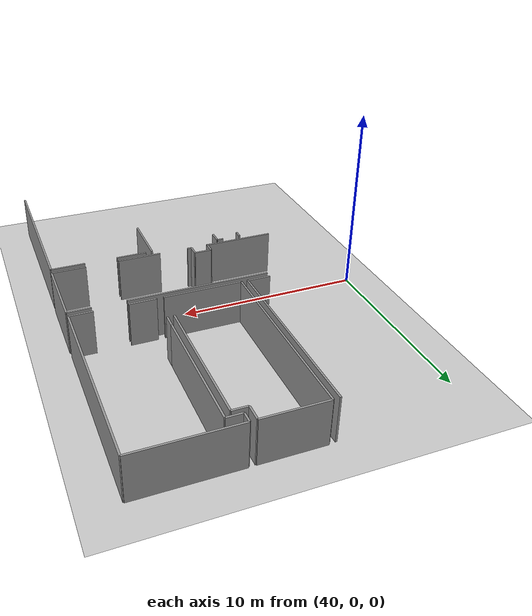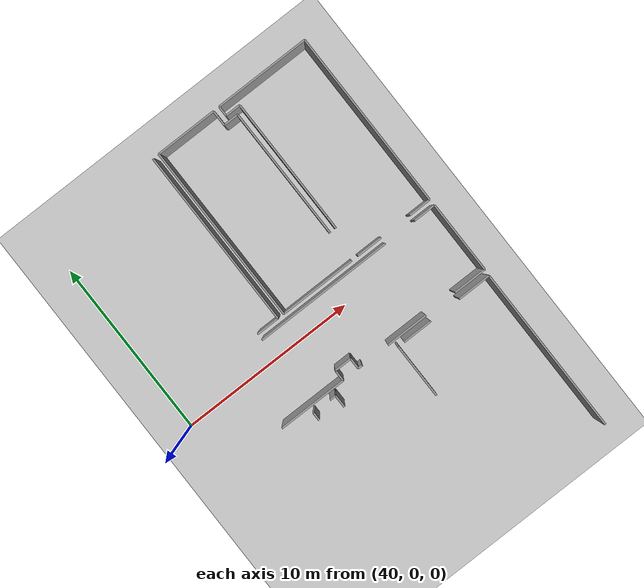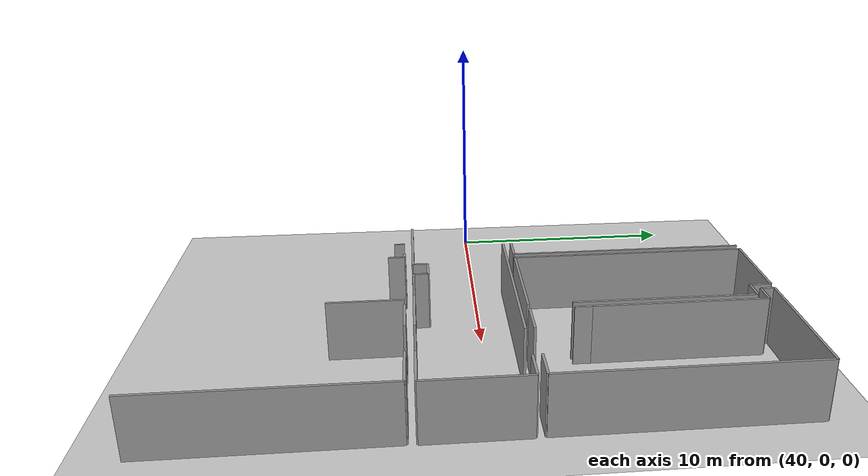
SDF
<sdf version="1.6">
 <world name="default">
  <model name="ground_plane">
   <static>1</static>
   <link name="link">
    <collision name="collision">
     <geometry><plane><normal>0 0 1</normal><size>100 100</size></plane></geometry>
     <surface><friction><ode><mu>100</mu><mu2>50</mu2></ode></friction></surface>
    </collision>
    <visual name="visual">
     <cast_shadows>0</cast_shadows>
     <geometry><plane><normal>0 0 1</normal><size>100 100</size></plane></geometry>
     <material>
      <script><uri>file://media/materials/scripts/gazebo.material</uri><name>Gazebo/Grey</name></script>
     </material>
    </visual>
   </link>
  </model>
  <model name="0510034689_Layout1">
   <static>1</static>
   <link name="Wall_261">
    <collision name="Wall_261_Collision">
     <geometry><box><size>7.66786259552 0.1 2.5</size></box></geometry>
     <pose>3.83393129776 0 1.25 0 0 0</pose>
    </collision>
    <visual name="Wall_261_Visual">
     <pose>3.83393129776 0 1.25 0 0 0</pose>
     <geometry><box><size>7.66786259552 0.1 2.5</size></box></geometry>
     <material>
      <script><uri>file://media/materials/scripts/gazebo.material</uri><name>Gazebo/Grey</name></script>
      <ambient>1 1 1 1</ambient>
     </material>
    </visual>
    <pose>102.17462761 -11.0329195597 0 0 0 0.0</pose>
   </link>
   <link name="Wall_262">
    <collision name="Wall_262_Collision">
     <geometry><box><size>1.24119393211 0.1 2.5</size></box></geometry>
     <pose>0.620596966055 0 1.25 0 0 0</pose>
    </collision>
    <visual name="Wall_262_Visual">
     <pose>0.620596966055 0 1.25 0 0 0</pose>
     <geometry><box><size>1.24119393211 0.1 2.5</size></box></geometry>
     <material>
      <script><uri>file://media/materials/scripts/gazebo.material</uri><name>Gazebo/Grey</name></script>
      <ambient>1 1 1 1</ambient>
     </material>
    </visual>
    <pose>111.649709182 -11.0329195597 0 0 0 0.0</pose>
   </link>
   <link name="Wall_263">
    <collision name="Wall_263_Collision">
     <geometry><box><size>3.9959337573 0.1 2.5</size></box></geometry>
     <pose>1.99796687865 0 1.25 0 0 0</pose>
    </collision>
    <visual name="Wall_263_Visual">
     <pose>1.99796687865 0 1.25 0 0 0</pose>
     <geometry><box><size>3.9959337573 0.1 2.5</size></box></geometry>
     <material>
      <script><uri>file://media/materials/scripts/gazebo.material</uri><name>Gazebo/Grey</name></script>
      <ambient>1 1 1 1</ambient>
     </material>
    </visual>
    <pose>112.890903115 -11.0329195597 0 0 0 -1.57079632679</pose>
   </link>
   <link name="Wall_264">
    <collision name="Wall_264_Collision">
     <geometry><box><size>1.84402329586 0.1 2.5</size></box></geometry>
     <pose>0.922011647932 0 1.25 0 0 0</pose>
    </collision>
    <visual name="Wall_264_Visual">
     <pose>0.922011647932 0 1.25 0 0 0</pose>
     <geometry><box><size>1.84402329586 0.1 2.5</size></box></geometry>
     <material>
      <script><uri>file://media/materials/scripts/gazebo.material</uri><name>Gazebo/Grey</name></script>
      <ambient>1 1 1 1</ambient>
     </material>
    </visual>
    <pose>112.890903115 -15.028853317 0 0 0 3.14159265359</pose>
   </link>
   <link name="Wall_265">
    <collision name="Wall_265_Collision">
     <geometry><box><size>2.35826847101 0.1 2.5</size></box></geometry>
     <pose>1.1791342355 0 1.25 0 0 0</pose>
    </collision>
    <visual name="Wall_265_Visual">
     <pose>1.1791342355 0 1.25 0 0 0</pose>
     <geometry><box><size>2.35826847101 0.1 2.5</size></box></geometry>
     <material>
      <script><uri>file://media/materials/scripts/gazebo.material</uri><name>Gazebo/Grey</name></script>
      <ambient>1 1 1 1</ambient>
     </material>
    </visual>
    <pose>109.242199071 -15.028853317 0 0 0 3.14159265359</pose>
   </link>
   <link name="Wall_266">
    <collision name="Wall_266_Collision">
     <geometry><box><size>0.242781594287 0.1 2.5</size></box></geometry>
     <pose>0.121390797143 0 1.25 0 0 0</pose>
    </collision>
    <visual name="Wall_266_Visual">
     <pose>0.121390797143 0 1.25 0 0 0</pose>
     <geometry><box><size>0.242781594287 0.1 2.5</size></box></geometry>
     <material>
      <script><uri>file://media/materials/scripts/gazebo.material</uri><name>Gazebo/Grey</name></script>
      <ambient>1 1 1 1</ambient>
     </material>
    </visual>
    <pose>105.2749473 -15.028853317 0 0 0 3.14159265359</pose>
   </link>
   <link name="Wall_267">
    <collision name="Wall_267_Collision">
     <geometry><box><size>0.606890529995 0.1 2.5</size></box></geometry>
     <pose>0.303445264997 0 1.25 0 0 0</pose>
    </collision>
    <visual name="Wall_267_Visual">
     <pose>0.303445264997 0 1.25 0 0 0</pose>
     <geometry><box><size>0.606890529995 0.1 2.5</size></box></geometry>
     <material>
      <script><uri>file://media/materials/scripts/gazebo.material</uri><name>Gazebo/Grey</name></script>
      <ambient>1 1 1 1</ambient>
     </material>
    </visual>
    <pose>105.032165706 -15.028853317 0 0 0 1.57079632679</pose>
   </link>
   <link name="Wall_268">
    <collision name="Wall_268_Collision">
     <geometry><box><size>0.949043785718 0.1 2.5</size></box></geometry>
     <pose>0.474521892859 0 1.25 0 0 0</pose>
    </collision>
    <visual name="Wall_268_Visual">
     <pose>0.474521892859 0 1.25 0 0 0</pose>
     <geometry><box><size>0.949043785718 0.1 2.5</size></box></geometry>
     <material>
      <script><uri>file://media/materials/scripts/gazebo.material</uri><name>Gazebo/Grey</name></script>
      <ambient>1 1 1 1</ambient>
     </material>
    </visual>
    <pose>105.032165706 -14.421962787 0 0 0 3.14159265359</pose>
   </link>
   <link name="Wall_269">
    <collision name="Wall_269_Collision">
     <geometry><box><size>0.61793182571 0.1 2.5</size></box></geometry>
     <pose>0.308965912855 0 1.25 0 0 0</pose>
    </collision>
    <visual name="Wall_269_Visual">
     <pose>0.308965912855 0 1.25 0 0 0</pose>
     <geometry><box><size>0.61793182571 0.1 2.5</size></box></geometry>
     <material>
      <script><uri>file://media/materials/scripts/gazebo.material</uri><name>Gazebo/Grey</name></script>
      <ambient>1 1 1 1</ambient>
     </material>
    </visual>
    <pose>104.08312192 -14.421962787 0 0 0 -1.57079632679</pose>
   </link>
   <link name="Wall_270">
    <collision name="Wall_270_Collision">
     <geometry><box><size>3.79554058565 0.1 2.5</size></box></geometry>
     <pose>1.89777029282 0 1.25 0 0 0</pose>
    </collision>
    <visual name="Wall_270_Visual">
     <pose>1.89777029282 0 1.25 0 0 0</pose>
     <geometry><box><size>3.79554058565 0.1 2.5</size></box></geometry>
     <material>
      <script><uri>file://media/materials/scripts/gazebo.material</uri><name>Gazebo/Grey</name></script>
      <ambient>1 1 1 1</ambient>
     </material>
    </visual>
    <pose>104.08312192 -15.0398946127 0 0 0 3.14159265359</pose>
   </link>
   <link name="Wall_304">
    <collision name="Wall_304_Collision">
     <geometry><box><size>9.91724104671 0.1 2.5</size></box></geometry>
     <pose>4.95862052336 0 1.25 0 0 0</pose>
    </collision>
    <visual name="Wall_304_Visual">
     <pose>4.95862052336 0 1.25 0 0 0</pose>
     <geometry><box><size>9.91724104671 0.1 2.5</size></box></geometry>
     <material>
      <script><uri>file://media/materials/scripts/gazebo.material</uri><name>Gazebo/Grey</name></script>
      <ambient>1 1 1 1</ambient>
     </material>
    </visual>
    <pose>103.439807805 -0.755250009201 0 0 0 -1.57079632679</pose>
   </link>
   <link name="Wall_305">
    <collision name="Wall_305_Collision">
     <geometry><box><size>1.25718477418 0.1 2.5</size></box></geometry>
     <pose>0.62859238709 0 1.25 0 0 0</pose>
    </collision>
    <visual name="Wall_305_Visual">
     <pose>0.62859238709 0 1.25 0 0 0</pose>
     <geometry><box><size>1.25718477418 0.1 2.5</size></box></geometry>
     <material>
      <script><uri>file://media/materials/scripts/gazebo.material</uri><name>Gazebo/Grey</name></script>
      <ambient>1 1 1 1</ambient>
     </material>
    </visual>
    <pose>103.439807805 -10.6724910559 0 0 0 3.14159265359</pose>
   </link>
   <link name="Wall_307">
    <collision name="Wall_307_Collision">
     <geometry><box><size>9.93221659722 0.1 2.5</size></box></geometry>
     <pose>4.96610829861 0 1.25 0 0 0</pose>
    </collision>
    <visual name="Wall_307_Visual">
     <pose>4.96610829861 0 1.25 0 0 0</pose>
     <geometry><box><size>9.93221659722 0.1 2.5</size></box></geometry>
     <material>
      <script><uri>file://media/materials/scripts/gazebo.material</uri><name>Gazebo/Grey</name></script>
      <ambient>1 1 1 1</ambient>
     </material>
    </visual>
    <pose>103.801505424 -10.6808672113 0 0 0 1.57079632679</pose>
   </link>
   <link name="Wall_308">
    <collision name="Wall_308_Collision">
     <geometry><box><size>3.40465333504 0.1 2.5</size></box></geometry>
     <pose>1.70232666752 0 1.25 0 0 0</pose>
    </collision>
    <visual name="Wall_308_Visual">
     <pose>1.70232666752 0 1.25 0 0 0</pose>
     <geometry><box><size>3.40465333504 0.1 2.5</size></box></geometry>
     <material>
      <script><uri>file://media/materials/scripts/gazebo.material</uri><name>Gazebo/Grey</name></script>
      <ambient>1 1 1 1</ambient>
     </material>
    </visual>
    <pose>103.801505424 -0.748650614061 0 0 0 0.0</pose>
   </link>
   <link name="Wall_309">
    <collision name="Wall_309_Collision">
     <geometry><box><size>0.860713419997 0.1 2.5</size></box></geometry>
     <pose>0.430356709998 0 1.25 0 0 0</pose>
    </collision>
    <visual name="Wall_309_Visual">
     <pose>0.430356709998 0 1.25 0 0 0</pose>
     <geometry><box><size>0.860713419997 0.1 2.5</size></box></geometry>
     <material>
      <script><uri>file://media/materials/scripts/gazebo.material</uri><name>Gazebo/Grey</name></script>
      <ambient>1 1 1 1</ambient>
     </material>
    </visual>
    <pose>107.206158759 -0.748650614061 0 0 0 -1.57079632679</pose>
   </link>
   <link name="Wall_310">
    <collision name="Wall_310_Collision">
     <geometry><box><size>0.827843355742 0.1 2.5</size></box></geometry>
     <pose>0.413921677871 0 1.25 0 0 0</pose>
    </collision>
    <visual name="Wall_310_Visual">
     <pose>0.413921677871 0 1.25 0 0 0</pose>
     <geometry><box><size>0.827843355742 0.1 2.5</size></box></geometry>
     <material>
      <script><uri>file://media/materials/scripts/gazebo.material</uri><name>Gazebo/Grey</name></script>
      <ambient>1 1 1 1</ambient>
     </material>
    </visual>
    <pose>107.206158759 -1.60936403406 0 0 0 0.0</pose>
   </link>
   <link name="Wall_311">
    <collision name="Wall_311_Collision">
     <geometry><box><size>7.3508378059 0.1 2.5</size></box></geometry>
     <pose>3.67541890295 0 1.25 0 0 0</pose>
    </collision>
    <visual name="Wall_311_Visual">
     <pose>3.67541890295 0 1.25 0 0 0</pose>
     <geometry><box><size>7.3508378059 0.1 2.5</size></box></geometry>
     <material>
      <script><uri>file://media/materials/scripts/gazebo.material</uri><name>Gazebo/Grey</name></script>
      <ambient>1 1 1 1</ambient>
     </material>
    </visual>
    <pose>108.034002114 -1.60936403406 0 0 0 -1.57079632679</pose>
   </link>
   <link name="Wall_312">
    <collision name="Wall_312_Collision">
     <geometry><box><size>4.23249669269 0.1 2.5</size></box></geometry>
     <pose>2.11624834634 0 1.25 0 0 0</pose>
    </collision>
    <visual name="Wall_312_Visual">
     <pose>2.11624834634 0 1.25 0 0 0</pose>
     <geometry><box><size>4.23249669269 0.1 2.5</size></box></geometry>
     <material>
      <script><uri>file://media/materials/scripts/gazebo.material</uri><name>Gazebo/Grey</name></script>
      <ambient>1 1 1 1</ambient>
     </material>
    </visual>
    <pose>108.034002114 -10.6807402998 0 0 0 -3.14156266858</pose>
   </link>
   <link name="Wall_313">
    <collision name="Wall_313_Collision">
     <geometry><box><size>6.95106675415 0.1 2.5</size></box></geometry>
     <pose>3.47553337708 0 1.25 0 0 0</pose>
    </collision>
    <visual name="Wall_313_Visual">
     <pose>3.47553337708 0 1.25 0 0 0</pose>
     <geometry><box><size>6.95106675415 0.1 2.5</size></box></geometry>
     <material>
      <script><uri>file://media/materials/scripts/gazebo.material</uri><name>Gazebo/Grey</name></script>
      <ambient>1 1 1 1</ambient>
     </material>
    </visual>
    <pose>108.402045305 -8.25140141963 0 0 0 1.57079632679</pose>
   </link>
   <link name="Wall_314">
    <collision name="Wall_314_Collision">
     <geometry><box><size>0.842691994807 0.1 2.5</size></box></geometry>
     <pose>0.421345997403 0 1.25 0 0 0</pose>
    </collision>
    <visual name="Wall_314_Visual">
     <pose>0.421345997403 0 1.25 0 0 0</pose>
     <geometry><box><size>0.842691994807 0.1 2.5</size></box></geometry>
     <material>
      <script><uri>file://media/materials/scripts/gazebo.material</uri><name>Gazebo/Grey</name></script>
      <ambient>1 1 1 1</ambient>
     </material>
    </visual>
    <pose>108.402045305 -1.30033466548 0 0 0 3.14159265359</pose>
   </link>
   <link name="Wall_315">
    <collision name="Wall_315_Collision">
     <geometry><box><size>0.559044915229 0.1 2.5</size></box></geometry>
     <pose>0.279522457615 0 1.25 0 0 0</pose>
    </collision>
    <visual name="Wall_315_Visual">
     <pose>0.279522457615 0 1.25 0 0 0</pose>
     <geometry><box><size>0.559044915229 0.1 2.5</size></box></geometry>
     <material>
      <script><uri>file://media/materials/scripts/gazebo.material</uri><name>Gazebo/Grey</name></script>
      <ambient>1 1 1 1</ambient>
     </material>
    </visual>
    <pose>107.55935331 -1.30033466548 0 0 0 1.57079632679</pose>
   </link>
   <link name="Wall_316">
    <collision name="Wall_316_Collision">
     <geometry><box><size>5.31124397329 0.1 2.5</size></box></geometry>
     <pose>2.65562198665 0 1.25 0 0 0</pose>
    </collision>
    <visual name="Wall_316_Visual">
     <pose>2.65562198665 0 1.25 0 0 0</pose>
     <geometry><box><size>5.31124397329 0.1 2.5</size></box></geometry>
     <material>
      <script><uri>file://media/materials/scripts/gazebo.material</uri><name>Gazebo/Grey</name></script>
      <ambient>1 1 1 1</ambient>
     </material>
    </visual>
    <pose>107.55935331 -0.741289750251 0 0 0 0.0</pose>
   </link>
   <link name="Wall_317">
    <collision name="Wall_317_Collision">
     <geometry><box><size>9.93653158635 0.1 2.5</size></box></geometry>
     <pose>4.96826579318 0 1.25 0 0 0</pose>
    </collision>
    <visual name="Wall_317_Visual">
     <pose>4.96826579318 0 1.25 0 0 0</pose>
     <geometry><box><size>9.93653158635 0.1 2.5</size></box></geometry>
     <material>
      <script><uri>file://media/materials/scripts/gazebo.material</uri><name>Gazebo/Grey</name></script>
      <ambient>1 1 1 1</ambient>
     </material>
    </visual>
    <pose>112.870597283 -0.741289750251 0 0 0 -1.57079632679</pose>
   </link>
   <link name="Wall_318">
    <collision name="Wall_318_Collision">
     <geometry><box><size>1.23738658876 0.1 2.5</size></box></geometry>
     <pose>0.61869329438 0 1.25 0 0 0</pose>
    </collision>
    <visual name="Wall_318_Visual">
     <pose>0.61869329438 0 1.25 0 0 0</pose>
     <geometry><box><size>1.23738658876 0.1 2.5</size></box></geometry>
     <material>
      <script><uri>file://media/materials/scripts/gazebo.material</uri><name>Gazebo/Grey</name></script>
      <ambient>1 1 1 1</ambient>
     </material>
    </visual>
    <pose>112.870597283 -10.6778213366 0 0 0 3.14159265359</pose>
   </link>
   <link name="Wall_319">
    <collision name="Wall_319_Collision">
     <geometry><box><size>1.45440515971 0.1 2.5</size></box></geometry>
     <pose>0.727202579856 0 1.25 0 0 0</pose>
    </collision>
    <visual name="Wall_319_Visual">
     <pose>0.727202579856 0 1.25 0 0 0</pose>
     <geometry><box><size>1.45440515971 0.1 2.5</size></box></geometry>
     <material>
      <script><uri>file://media/materials/scripts/gazebo.material</uri><name>Gazebo/Grey</name></script>
      <ambient>1 1 1 1</ambient>
     </material>
    </visual>
    <pose>109.851374007 -10.6778213366 0 0 0 3.14159265359</pose>
   </link>
   <link name="Wall_320">
    <collision name="Wall_320_Collision">
     <geometry><box><size>0.702092466571 0.1 2.5</size></box></geometry>
     <pose>0.351046233285 0 1.25 0 0 0</pose>
    </collision>
    <visual name="Wall_320_Visual">
     <pose>0.351046233285 0 1.25 0 0 0</pose>
     <geometry><box><size>0.702092466571 0.1 2.5</size></box></geometry>
     <material>
      <script><uri>file://media/materials/scripts/gazebo.material</uri><name>Gazebo/Grey</name></script>
      <ambient>1 1 1 1</ambient>
     </material>
    </visual>
    <pose>108.396968847 -8.95347553338 0 0 0 1.56356579481</pose>
   </link>
   <link name="Wall_322">
    <collision name="Wall_322_Collision">
     <geometry><box><size>1.64413776999 0.1 2.5</size></box></geometry>
     <pose>0.822068884994 0 1.25 0 0 0</pose>
    </collision>
    <visual name="Wall_322_Visual">
     <pose>0.822068884994 0 1.25 0 0 0</pose>
     <geometry><box><size>1.64413776999 0.1 2.5</size></box></geometry>
     <material>
      <script><uri>file://media/materials/scripts/gazebo.material</uri><name>Gazebo/Grey</name></script>
      <ambient>1 1 1 1</ambient>
     </material>
    </visual>
    <pose>107.599330415 -15.399307825 0 0 0 0.0</pose>
   </link>
   <link name="Wall_323">
    <collision name="Wall_323_Collision">
     <geometry><box><size>1.84275418141 0.1 2.5</size></box></geometry>
     <pose>0.921377090707 0 1.25 0 0 0</pose>
    </collision>
    <visual name="Wall_323_Visual">
     <pose>0.921377090707 0 1.25 0 0 0</pose>
     <geometry><box><size>1.84275418141 0.1 2.5</size></box></geometry>
     <material>
      <script><uri>file://media/materials/scripts/gazebo.material</uri><name>Gazebo/Grey</name></script>
      <ambient>1 1 1 1</ambient>
     </material>
    </visual>
    <pose>111.020228415 -15.399307825 0 0 0 0.0</pose>
   </link>
   <link name="Wall_324">
    <collision name="Wall_324_Collision">
     <geometry><box><size>9.25120978335 0.1 2.5</size></box></geometry>
     <pose>4.62560489167 0 1.25 0 0 0</pose>
    </collision>
    <visual name="Wall_324_Visual">
     <pose>4.62560489167 0 1.25 0 0 0</pose>
     <geometry><box><size>9.25120978335 0.1 2.5</size></box></geometry>
     <material>
      <script><uri>file://media/materials/scripts/gazebo.material</uri><name>Gazebo/Grey</name></script>
      <ambient>1 1 1 1</ambient>
     </material>
    </visual>
    <pose>112.862982597 -15.399307825 0 0 0 -1.57079632679</pose>
   </link>
   <link name="Wall_339">
    <collision name="Wall_339_Collision">
     <geometry><box><size>3.02886854639 0.1 2.5</size></box></geometry>
     <pose>1.5144342732 0 1.25 0 0 0</pose>
    </collision>
    <visual name="Wall_339_Visual">
     <pose>1.5144342732 0 1.25 0 0 0</pose>
     <geometry><box><size>3.02886854639 0.1 2.5</size></box></geometry>
     <material>
      <script><uri>file://media/materials/scripts/gazebo.material</uri><name>Gazebo/Grey</name></script>
      <ambient>1 1 1 1</ambient>
     </material>
    </visual>
    <pose>107.231414136 -15.4041304599 0 0 0 -1.57079632679</pose>
   </link>
   <link name="Wall_344">
    <collision name="Wall_344_Collision">
     <geometry><box><size>0.448505046634 0.1 2.5</size></box></geometry>
     <pose>0.224252523317 0 1.25 0 0 0</pose>
    </collision>
    <visual name="Wall_344_Visual">
     <pose>0.224252523317 0 1.25 0 0 0</pose>
     <geometry><box><size>0.448505046634 0.1 2.5</size></box></geometry>
     <material>
      <script><uri>file://media/materials/scripts/gazebo.material</uri><name>Gazebo/Grey</name></script>
      <ambient>1 1 1 1</ambient>
     </material>
    </visual>
    <pose>101.96293932 -15.3962619503 0 0 0 -1.57079632679</pose>
   </link>
   <link name="Wall_347">
    <collision name="Wall_347_Collision">
     <geometry><box><size>0.334030923243 0.1 2.5</size></box></geometry>
     <pose>0.167015461621 0 1.25 0 0 0</pose>
    </collision>
    <visual name="Wall_347_Visual">
     <pose>0.167015461621 0 1.25 0 0 0</pose>
     <geometry><box><size>0.334030923243 0.1 2.5</size></box></geometry>
     <material>
      <script><uri>file://media/materials/scripts/gazebo.material</uri><name>Gazebo/Grey</name></script>
      <ambient>1 1 1 1</ambient>
     </material>
    </visual>
    <pose>102.998155977 -15.3962619503 0 0 0 0.0</pose>
   </link>
   <link name="Wall_348">
    <collision name="Wall_348_Collision">
     <geometry><box><size>0.696633614809 0.1 2.5</size></box></geometry>
     <pose>0.348316807404 0 1.25 0 0 0</pose>
    </collision>
    <visual name="Wall_348_Visual">
     <pose>0.348316807404 0 1.25 0 0 0</pose>
     <geometry><box><size>0.696633614809 0.1 2.5</size></box></geometry>
     <material>
      <script><uri>file://media/materials/scripts/gazebo.material</uri><name>Gazebo/Grey</name></script>
      <ambient>1 1 1 1</ambient>
     </material>
    </visual>
    <pose>103.3321869 -15.3962619503 0 0 0 -1.56387350061</pose>
   </link>
   <pose>-56.4 12.3396063334 0 0 0 0</pose>
  </model>
 </world>
</sdf>
